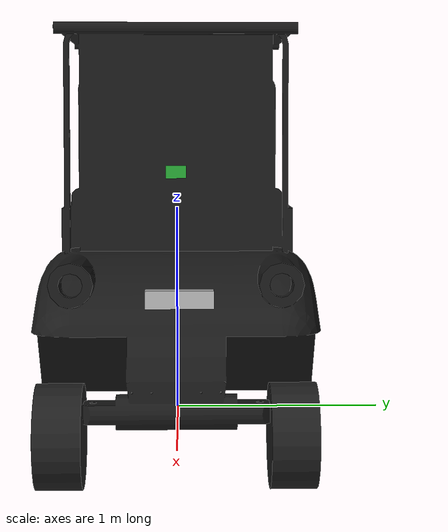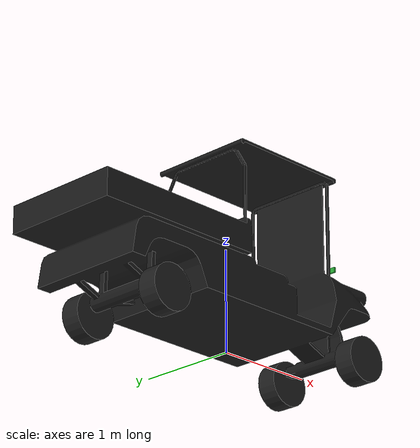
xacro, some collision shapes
<?xml version="1.0"?>
<robot name="rbcar" xmlns:xacro="http://www.ros.org/wiki/xacro">

	<!-- Imported elements -->

	<!-- First we import all posible elements defined in the urdf.xacro files. All these elements are defined as macro:xacros -->

	<!-- Import Robotnik CAR base elements -->
	<xacro:include filename="$(find rbcar_description)/urdf/bases/rbcar_base_v2.urdf.xacro" />

	<!-- Import Robotnik CAR wheels -->
	<xacro:include filename="$(find rbcar_description)/urdf/wheels/suspension_wheel_v2.urdf.xacro" />

	<!-- Import all available sensors -->
	<!--xacro:include filename="$(find robotnik_sensors)/urdf/all_sensors.urdf.xacro" /-->

        <!-- //adding -->
        <xacro:include filename="$(find robotnik_sensors)/urdf/kinect.urdf.xacro" />
        <xacro:include filename="$(find robotnik_sensors)/urdf/imu.urdf.xacro" />
        <!-- //added camera thing -->
        <xacro:include filename="$(find robotnik_sensors)/urdf/camera.urdf.xacro" />
	<!-- Global parameters -->

	<xacro:property name="PI" value="3.1415926535897931"/>

	<!-- Wheel parameters -->
	<xacro:property name="wheel_offset_x" value="1.0" />    <!-- x,y,z in translation from base_link to the center of the wheel -->
	<xacro:property name="wheel_offset_y" value="0.75" />
	<xacro:property name="wheel_offset_z" value="0.0" />

	<!-- Flag to select the high or low quality model -->
	<xacro:property name="hq" value="true" />

	<!-- Robots Elements -->

	<!-- Here we create the robot elements using the xacro:macros imported at the beggining of this file -->

	<!-- Summit XL base -->
	<xacro:rbcar_base name="rbcar" publish_bf="true" hq="${hq}" />

	<!-- Gazebo ros control pluggins -->
	<xacro:ros_control/>

	<!-- Gazebo skid steering pluggins -->
	<!-- xacro:skid_steering broadcastOdomTF="1"/ -->

	<!-- WHEELS -->

  <!-- Wheels -->
  <xacro:front_wheel lr_prefix="left" fr_prefix="front"
                     lr_reflect="1" fr_reflect="1"/>
  <xacro:front_wheel lr_prefix="right" fr_prefix="front"
                     lr_reflect="-1" fr_reflect="1"/>
  <xacro:rear_wheel lr_prefix="left" fr_prefix="rear"
                    lr_reflect="1" fr_reflect="-1"/>
  <xacro:rear_wheel lr_prefix="right" fr_prefix="rear"
                    lr_reflect="-1" fr_reflect="-1"/>

<!-- //All sensors are commented for testing pupose// (sick, imu, gps are running currently -->

	<!-- SENSORS -->
	<xacro:sensor_imu prefix="imu" parent="base_link">
		<origin xyz="0.0 0.0 0.170" rpy="0 0 0"/>
	</xacro:sensor_imu>

    <xacro:sensor_kinect prefix="kinect" parent="base_link">
		<origin xyz="1.4 0.0 0.5" rpy="0 0.0 0"/>
	</xacro:sensor_kinect>

<!-- //comment    -->
<!-- //comment	 -->

<!-- //comment     -->
<!-- //comment	 -->

<!-- #camera thing added -->
	<xacro:camera_sensor prefix="camera" parent="base_link">
		<origin xyz="1.45 0.0 1.0" rpy="0 0 0"/>
	</xacro:camera_sensor>

  <!-- ros control plugin -->

</robot>

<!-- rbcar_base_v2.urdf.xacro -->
<robot name="rbcar" xmlns:xacro="http://www.ros.org/wiki/xacro">

  <xacro:include filename="$(find rbcar_description)/urdf/bases/rbcar_base.gazebo.xacro" />

  <xacro:macro name="rbcar_base" params="name publish_bf hq">

  <!-- Robot mechanical and motor parameters -->
  <xacro:property name="PI" value="3.1415926535897931"/>
  <xacro:property name="wheel_width" value="0.175" />
  <xacro:property name="clearance" value="${tire_dia/2.0}" />

  <!-- BASE FOOTPRINT -->
  <xacro:if value="${publish_bf}">
    <link name="base_footprint">
      <visual>
          <origin xyz="0 0 0" rpy="0 0 0" />
          <geometry>
             <box size="0.001 0.001 0.001" />
          </geometry>
      </visual>
    </link>

    <joint name="base_footprint_joint" type="fixed">
      <origin xyz="0 0 ${clearance}" rpy="0 0 0" />  <!-- height is the clearance -->
      <parent link="base_footprint"/>
      <child link="base_link" />
    </joint>
  </xacro:if>

  <!-- BASE_LINK -->
  <link name="base_link">
    <inertial>
      <mass value="125.0" />
      <origin xyz="0 0 0" />
      <inertia  ixx="1.391" ixy="0.004"  ixz="0.0"  iyy="6.853"  iyz="0.0"  izz="6.125" />
    </inertial>
    <visual>
       <origin xyz="0 0 0" rpy="0 0 0" />
       <xacro:if value="${hq}">
       <geometry>
	     <mesh filename="package://rbcar_description/meshes/bases/rbcar_chassis_v2.STL"/>
       </geometry>
       </xacro:if>
       <xacro:unless value="${hq}">
       <geometry>
	     <mesh filename="package://rbcar_description/meshes/bases/rbcar_chassis_v2.STL"/>
       </geometry>
       </xacro:unless>
       <material name="white">
         <color rgba="0.1 0.1 0.1 1"/>
       </material>
    </visual>
    <collision>
       <origin xyz="0 0 0" rpy="0 0 0 " />
       <geometry>
         <mesh filename="package://rbcar_description/meshes/bases/rbcar_chassis_v2.STL"/>
       </geometry>
    </collision>
  </link>

  </xacro:macro>
</robot>

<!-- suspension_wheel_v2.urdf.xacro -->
<robot name="wheel" xmlns:xacro="http://www.ros.org/wiki/xacro">

  <xacro:property name="hub_dia" value="0.235"/>
  <xacro:property name="tire_dia" value="0.440"/>
  <xacro:property name="tire_width" value="0.195"/>

  <xacro:property name="hex_hub_depth" value="0.120"/> <!-- or +0.072 -->
  <xacro:property name="wheel_mass" value="8.0"/>   <!-- check -->

  <xacro:property name="wheelbase" value="2.5"/>
  <xacro:property name="hex_hub_dist" value="0.9191"/>  <!-- 1.127 0.742 0.900 check -->
  <xacro:property name="axle_length" value="0.120"/>
  <xacro:property name="wheel_travel" value="0.1"/>
  <xacro:property name="shock_z_offset" value="0.05"/>

  <!-- Degree-to-radian conversions -->
  <xacro:property name="degrees_45" value="0.785398163"/>
  <xacro:property name="degrees_90" value="1.57079633"/>
  <xacro:property name="degrees_180" value="3.14159265"/>

  <!-- shock_eff_limit is 2 * ((shock_stroke / 2) * shock_spring_constant) N. -->
  <xacro:property name="shock_eff_limit" value="100"/>
  <xacro:property name="shock_vel_limit" value="1000"/>

  <xacro:property name="wheel_joint_damping" value="0.2" />
  <xacro:property name="wheel_joint_friction" value="0.7" />

  <xacro:property name="suspension_joint_damping" value="0.2" />
  <xacro:property name="suspension_joint_friction" value="0.7" />

  <!-- xacro:property name="axle_eff_limit" value="102.5"/ -->
  <xacro:property name="axle_eff_limit" value="204.95"/>
  <!-- max_speed = 33 Km/h = 9.17 m/s
       axle_vel_limit = (2 * pi) * (max_speed / (pi * tire_dia)) =  39.02 rad/s -->
  <xacro:property name="axle_vel_limit" value="39.02"/>

  <!-- Servo_stall_torque of the direction axis in Nm. servo_no_load_speed is
       measured in rad/s. -->
  <xacro:property name="servo_stall_torque" value="50"/>  <!-- check -->
  <xacro:property name="servo_no_load_speed" value="25"/> <!-- check -->

  <xacro:macro name="thick_walled_tube_inertial"
               params="inner_rad outer_rad height mass">
    <inertial>
      <mass value="${mass}"/>
      <inertia ixx="${(1 / 12) * mass * (3 * (inner_rad * inner_rad +
                    outer_rad * outer_rad) + height * height)}"
               ixy="0" ixz="0"
               iyy="${(1 / 12) * mass * (3 * (inner_rad * inner_rad +
                    outer_rad * outer_rad) + height * height)}"
               iyz="0"
               izz="${mass * (inner_rad * inner_rad +
                    outer_rad * outer_rad) / 2}"/>
    </inertial>
  </xacro:macro>

  <!-- Null inertial element. This is needed to make the model work with
       Gazebo. -->
  <xacro:macro name="null_inertial">
    <inertial>
      <mass value="0.001"/>
      <inertia ixx="0.001" ixy="0" ixz="0" iyy="0.001" iyz="0" izz="0.001"/>
    </inertial>
  </xacro:macro>

  <!-- Shock absorber -->
  <xacro:macro name="shock"
               params="lr_prefix fr_prefix lr_reflect fr_reflect child">

    <joint name="${lr_prefix}_${fr_prefix}_shock" type="prismatic">
      <parent link="base_link"/>
      <child link="${child}"/>

      <origin xyz="${fr_reflect * wheelbase / 2}
                   ${lr_reflect * ((hex_hub_dist / 2) - axle_length)}
                   ${-wheel_travel}"/>
                  <!-- ${(wheel_travel / 2) - shock_z_offset}"/-->
      <axis xyz="0 0 -1"/>
      <limit lower="${-wheel_travel / 2}" upper="${wheel_travel / 2}"
             effort="${shock_eff_limit}" velocity="${shock_vel_limit}"/>
      <joint_properties damping="${suspension_joint_damping}" friction="{suspension_joint_friction}"/>
    </joint>

    <transmission name="${lr_prefix}_${fr_prefix}_shock_trans">
      <type>transmission_interface/SimpleTransmission</type>
      <joint name="${lr_prefix}_${fr_prefix}_shock">
        <hardwareInterface>hardware_interface/EffortJointInterface</hardwareInterface>
      </joint>
      <actuator name="${lr_prefix}_${fr_prefix}_shock_act">
        <mechanicalReduction>1</mechanicalReduction>
      </actuator>
    </transmission>

  </xacro:macro>

  <!-- The "wheel" macro defines an axle carrier, axle, and wheel. -->
  <xacro:macro name="wheel" params="lr_prefix fr_prefix lr_reflect">

    <link name="${lr_prefix}_${fr_prefix}_axle_carrier">
      <xacro:null_inertial/>
    </link>

    <!-- The left and right axles have the same axis so that identical
         rotation values cause the wheels to rotate in the same direction. -->
    <joint name="${lr_prefix}_${fr_prefix}_axle" type="continuous">
      <parent link="${lr_prefix}_${fr_prefix}_axle_carrier"/>
      <child link="${lr_prefix}_${fr_prefix}_wheel"/>
      <origin rpy="${degrees_90} 0 ${degrees_180}"/>
      <axis xyz="0 0 -1"/>
      <limit effort="${axle_eff_limit}" velocity="${axle_vel_limit}"/>
      <joint_properties damping="${wheel_joint_damping}" friction="{wheel_joint_friction}"/>
    </joint>

    <transmission name="${lr_prefix}_${fr_prefix}_axle_trans">
      <type>transmission_interface/SimpleTransmission</type>
      <joint name="${lr_prefix}_${fr_prefix}_axle">
        <hardwareInterface>hardware_interface/VelocityJointInterface</hardwareInterface>
      </joint>
      <actuator name="${lr_prefix}_${fr_prefix}_axle_act">
        <mechanicalReduction>1</mechanicalReduction>
      </actuator>
    </transmission>

    <gazebo reference="${lr_prefix}_${fr_prefix}_axle_carrier">
      <material>Gazebo/Black</material>
    </gazebo>

    <link name="${lr_prefix}_${fr_prefix}_wheel">
      <visual>
        <origin xyz="0
                     0
                     ${lr_reflect * (axle_length - (tire_width / 2 - hex_hub_depth))}"/>
        <geometry>
          <cylinder radius="${tire_dia / 2}" length="${tire_width}"/>
        </geometry>
        <material name="tire_mat"/>
      </visual>

      <collision>
        <origin xyz="0
                     0
                     ${lr_reflect * (axle_length - (tire_width / 2 - hex_hub_depth))}"/>
        <geometry>
          <cylinder radius="${tire_dia / 2}" length="${tire_width}"/>
        </geometry>
      </collision>

      <xacro:thick_walled_tube_inertial
          inner_rad="${hub_dia / 2}" outer_rad="${tire_dia / 2}"
          height="${tire_width}" mass="${wheel_mass}"/>
    </link>

    <gazebo reference="${lr_prefix}_${fr_prefix}_wheel">
      <material>Gazebo/Black</material>
    </gazebo>
  </xacro:macro>

  <!-- xacro:macro name="rubber_wheel" params="name parent *origin reflect hq" -->

  <!-- Front wheel -->
  <xacro:macro name="front_wheel"
               params="lr_prefix fr_prefix lr_reflect fr_reflect">
    <xacro:shock lr_prefix="${lr_prefix}" fr_prefix="${fr_prefix}"
                 lr_reflect="${lr_reflect}" fr_reflect="${fr_reflect}"
                 child="${lr_prefix}_steering_link"/>

    <link name="${lr_prefix}_steering_link">
      <xacro:null_inertial/>
    </link>

    <joint name="${lr_prefix}_steering_joint" type="revolute">
      <parent link="${lr_prefix}_steering_link"/>
      <child link="${lr_prefix}_${fr_prefix}_axle_carrier"/>
      <axis xyz="0 0 1"/>
      <limit lower="${-degrees_45}" upper="${degrees_45}"
             effort="${servo_stall_torque}" velocity="${servo_no_load_speed}"/>
    </joint>
    <transmission name="${lr_prefix}_steering_trans">
      <type>transmission_interface/SimpleTransmission</type>
      <joint name="${lr_prefix}_steering_joint">
        <hardwareInterface>hardware_interface/EffortJointInterface</hardwareInterface>
      </joint>
      <actuator name="${lr_prefix}_steering_act">
        <mechanicalReduction>1</mechanicalReduction>
      </actuator>
    </transmission>

    <gazebo reference="${lr_prefix}_steering_link">
      <material>Gazebo/Black</material>
    </gazebo>

    <xacro:wheel lr_prefix="${lr_prefix}" fr_prefix="${fr_prefix}"
                 lr_reflect="${lr_reflect}"/>
  </xacro:macro>

  <!-- Rear wheel -->
  <xacro:macro name="rear_wheel"
               params="lr_prefix fr_prefix lr_reflect fr_reflect">
    <xacro:shock lr_prefix="${lr_prefix}" fr_prefix="${fr_prefix}"
                 lr_reflect="${lr_reflect}" fr_reflect="${fr_reflect}"
                 child="${lr_prefix}_${fr_prefix}_axle_carrier"/>
    <xacro:wheel lr_prefix="${lr_prefix}" fr_prefix="${fr_prefix}"
                 lr_reflect="${lr_reflect}"/>
  </xacro:macro>

 </robot>

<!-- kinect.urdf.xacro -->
<robot name="sensor_kinect" xmlns:xacro="http://wiki.ros.org/xacro">

  <xacro:property name="M_PI" value="3.1415926535897931" />
	<xacro:property name="cam_px" value="-0.087" />
	<xacro:property name="cam_py" value="-0.0125" />
	<xacro:property name="cam_pz" value="0.2870" />
	<xacro:property name="cam_or" value="0" />
	<xacro:property name="cam_op" value="0" />
	<xacro:property name="cam_oy" value="0" />

  <xacro:macro name="sensor_kinect" params="prefix parent *origin include_inertial:=^|true">

    <joint name="${prefix}_rgb_joint" type="fixed">
      <xacro:insert_block name="origin" />
      <parent link="${parent}"/>
      <child link="${prefix}_rgb_base_link" />
    </joint>
    <link name="${prefix}_rgb_base_link">
    </link>

    <joint name="${prefix}_rgb_optical_joint" type="fixed">
      <origin xyz="0 0 0" rpy="${-M_PI/2} 0 ${-M_PI/2}" />
      <parent link="${prefix}_rgb_base_link" />
      <child link="${prefix}_rgb_optical_frame" />
    </joint>
    <link name="${prefix}_rgb_optical_frame">
    </link>

  <joint name="${prefix}_joint" type="fixed">
    <origin xyz="-0.031 ${-cam_py} -0.016" rpy="0 0 0"/>
    <parent link="${prefix}_rgb_base_link"/>
    <child link="${prefix}_link"/>
  </joint>
    <link name="${prefix}_link">
    <visual>
     <origin xyz="0 0 0" rpy="0 0 ${M_PI/2}"/>
      <geometry>
       <mesh filename="package://robotnik_sensors/meshes/kinect.dae"/>
      </geometry>
    </visual>
	  <collision>
      <origin xyz="0.0 0.0 0.0" rpy="0 0 0"/>
	    <geometry>
	      <box size="0.07271 0.27794 0.073"/>
	    </geometry>
	  </collision>
    <xacro:if value="${include_inertial}">
      <inertial>
        <origin xyz="-0.0 0.0 0.015" rpy="0 0 0" />
        <mass value="0.2" />
        <xacro:solid_cuboid_inertia m="0.2" w="0.06" h="0.24" d="0.04" />
      </inertial>
    </xacro:if>
  </link>

	<joint name="${prefix}_depth_joint" type="fixed">
	  <origin xyz="0 ${2 * -cam_py} 0" rpy="0 0 0" />
	  <parent link="${prefix}_rgb_base_link" />
	  <child link="${prefix}_depth_link" />
	</joint>
	<link name="${prefix}_depth_link">
	</link>
	<joint name="${prefix}_depth_optical_joint" type="fixed">
	  <origin xyz="0 0 0" rpy="${-M_PI/2} 0 ${-M_PI/2}" />
	  <parent link="${prefix}_depth_link" />
	  <child link="${prefix}_depth_optical_frame" />
	</joint>
	<link name="${prefix}_depth_optical_frame">
	</link>

		<!-- Kinect sensor for simulation -->
	  <xacro:sensor_kinect_gazebo/>

  </xacro:macro>

  <xacro:macro name="sensor_kinect_gazebo">

    <gazebo reference="${prefix}_link">
      <sensor type="depth" name="${prefix}_sensor">
        <always_on>true</always_on>
        <update_rate>20.0</update_rate>
        <camera>
          <horizontal_fov>${60.0*M_PI/180.0}</horizontal_fov>
          <image>
            <format>R8G8B8</format>
            <width>640</width>
            <height>480</height>
          </image>
          <clip>
            <near>0.05</near>
            <far>8.0</far>
          </clip>
        </camera>
        <plugin name="${prefix}_controller" filename="libgazebo_ros_openni_kinect.so">
          <cameraName>${prefix}</cameraName>
          <alwaysOn>true</alwaysOn>
          <updateRate>10</updateRate>
          <imageTopicName>rgb/image_raw</imageTopicName>
          <depthImageTopicName>depth/image_raw</depthImageTopicName>
          <pointCloudTopicName>depth/points</pointCloudTopicName>
          <cameraInfoTopicName>rgb/camera_info</cameraInfoTopicName>
          <depthImageCameraInfoTopicName>depth/camera_info</depthImageCameraInfoTopicName>
          <frameName>/${prefix}_depth_optical_frame</frameName>
          <baseline>0.1</baseline>
          <distortion_k1>0.0</distortion_k1>
          <distortion_k2>0.0</distortion_k2>
          <distortion_k3>0.0</distortion_k3>
          <distortion_t1>0.0</distortion_t1>
          <distortion_t2>0.0</distortion_t2>
          <pointCloudCutoff>0.4</pointCloudCutoff>
          <pointCloudCutoffMax>5.0</pointCloudCutoffMax>
        </plugin>
      </sensor>
    </gazebo>

  </xacro:macro>

</robot>

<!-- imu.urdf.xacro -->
<robot name="sensor_imu" xmlns:xacro="http://wiki.ros.org/xacro">

  <xacro:macro name="sensor_imu" params="prefix ns:='' topic:='imu/data' parent *origin include_inertial:=^|true">

	  <joint name="${prefix}_joint" type="fixed">
	      <axis xyz="1 0 0"/>
	      <!--origin xyz="0 0 0.2825"/-->
	      <xacro:insert_block name="origin"/>
	      <parent link="${parent}"/>
	      <child link="${prefix}_link"/>
	  </joint>

	  <link name="${prefix}_link">
		  <xacro:if value="${include_inertial}">
	      	<inertial>
				<origin xyz="0.0 0 0.01" rpy="0 0 0" />
				<mass value="0.005" />
				<xacro:solid_cuboid_inertia m="0.005" w="0.001" h="0.001" d="0.001" />
		  	</inertial>
		  </xacro:if>
	      <visual>
	        <origin rpy="0 0 0" xyz="0 0 0"/>
	        <geometry>
	          <box size="0.001 0.001 0.001"/>
	        </geometry>
	      </visual>
	  </link>

 <gazebo reference="${prefix}_link">
    <gravity>true</gravity>
    <sensor name="${prefix}_imu_sensor" type="imu">
      <always_on>true</always_on>
      <update_rate>100</update_rate>
      <visualize>true</visualize>
      <topic>__default_topic__</topic>
      <plugin filename="libgazebo_ros_imu_sensor.so" name="${prefix}_imu_plugin">
        <topicName>${topic}</topicName>
		<bodyName>${prefix}_link</bodyName>
        <updateRateHZ>100.0</updateRateHZ>
        <gaussianNoise>0.0</gaussianNoise>
        <xyzOffset>0 0 0</xyzOffset>
        <rpyOffset>0 0 0</rpyOffset>
		<frameName>${prefix}_link</frameName>
      </plugin>
      <pose>0 0 0 0 0 0</pose>
    </sensor>
  </gazebo>

  </xacro:macro>

</robot>

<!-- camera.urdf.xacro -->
<robot xmlns:xacro="http://www.ros.org/wiki/xacro" name="camera">

    <xacro:property name="pi" value="3.1415926535897931"/>

    <xacro:macro name="camera_sensor" params="prefix parent *origin prefix_topic:='camera1'">
        <joint name="camera_sensor_joint" type="fixed">
        <axis xyz="0 1 0" />
	<xacro:insert_block name="origin" />
            <parent link="${parent}"/>
            <child link="camera_link"/>
        </joint>

        <link name="camera_link">
            <collision>
                <origin xyz="0 0 0" rpy="0 0 0"/>
                <geometry>
                    <box size="0.02 0.08 0.05"/>
                </geometry>
            </collision>
            <visual>
                <origin xyz="0 0 0" rpy="0 0 0"/>
                <geometry>
                    <box size="0.02 0.08 0.05"/>
                </geometry>
                <material name="iRobot/Green"/>
            </visual>
            <inertial>
                <mass value="0.0001" />
                <origin xyz="0 0 0" rpy="0 0 ${pi}"/>
                <inertia ixx="0.0000001" ixy="0" ixz="0" iyy="0.0000001" iyz="0" izz="0.0000001" />
            </inertial>
        </link>

        <gazebo reference="camera_link">
            <sensor type="camera" name="camera">
                <update_rate>30.0</update_rate>
                <camera name="head">
                    <horizontal_fov>2.3962634</horizontal_fov>
                    <image>
                        <width>800</width>
                        <height>600</height>
                        <format>R8G8B8</format>
                    </image>
                    <clip>
                        <near>0.02</near>
                        <far>300</far>
                    </clip>
                    <noise>
                        <type>gaussian</type>
                        <mean>0.0</mean>
                        <stddev>0.007</stddev>
                    </noise>
                </camera>
                <plugin name="camera_controller" filename="libgazebo_ros_camera.so">
                    <alwaysOn>true</alwaysOn>
                    <updateRate>0.0</updateRate>
                    <imageTopicName>${prefix_topic}/image_raw</imageTopicName>
                    <cameraInfoTopicName>camera_info</cameraInfoTopicName>
                    <frameName>camera_link</frameName>
                    <hackBaseline>0.07</hackBaseline>
                    <distortionK1>0.0</distortionK1>
                    <distortionK2>0.0</distortionK2>
                    <distortionK3>0.0</distortionK3>
                    <distortionT1>0.0</distortionT1>
                    <distortionT2>0.0</distortionT2>
                </plugin>
            </sensor>
    </gazebo>

    </xacro:macro>

</robot>
